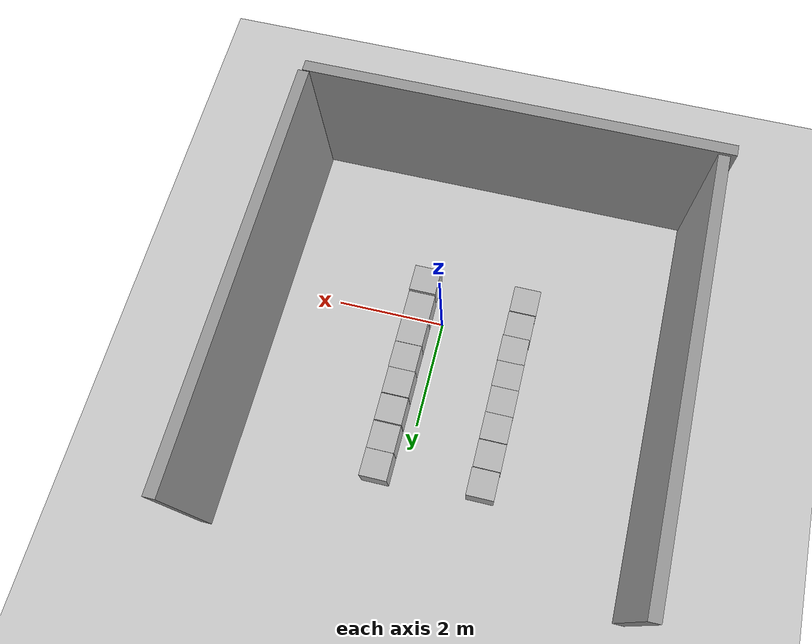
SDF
<sdf version="1.6">
 <world name="default">
  <light name="sun" type="directional">
   <pose>0 0 10 0 -0 0</pose>
   <diffuse>0.8 0.8 0.8 1</diffuse>
   <specular>0.1 0.1 0.1 1</specular>
   <attenuation>
    <range>1000</range>
    <constant>0.9</constant>
    <linear>0.01</linear>
    <quadratic>0.001</quadratic>
   </attenuation>
   <direction>-0.5 0.5 -1</direction>
  </light>
  <model name="ground_plane">
   <static>1</static>
   <link name="link">
    <collision name="collision">
     <geometry><plane><normal>0 0 1</normal><size>100 100</size></plane></geometry>
     <surface><friction><ode><mu>100</mu><mu2>50</mu2></ode></friction></surface>
    </collision>
    <visual name="visual">
     <cast_shadows>0</cast_shadows>
     <geometry><plane><normal>0 0 1</normal><size>100 100</size></plane></geometry>
     <material>
      <script><uri>file://media/materials/scripts/gazebo.material</uri><name>Gazebo/Grey</name></script>
     </material>
    </visual>
   </link>
  </model>
  <gravity>0 0 -9.8</gravity>
  <magnetic_field>6e-06 2.3e-05 -4.2e-05</magnetic_field>
  <atmosphere type="adiabatic"/>
  <physics name="default_physics" default="0" type="ode">
   <max_step_size>0.001</max_step_size>
   <real_time_factor>1</real_time_factor>
   <real_time_update_rate>1000</real_time_update_rate>
  </physics>
  <scene><ambient>0.4 0.4 0.4 1</ambient><background>0.7 0.7 0.7 1</background><shadows>1</shadows></scene>
  <spherical_coordinates>
   <surface_model>EARTH_WGS84</surface_model>
   <latitude_deg>0</latitude_deg>
   <longitude_deg>0</longitude_deg>
   <elevation>0</elevation>
   <heading_deg>0</heading_deg>
  </spherical_coordinates>
  <model name="al_test">
   <link name="link">
    <pose>0 0 0.115 0 -0 0</pose>
    <inertial>
     <mass>0.39</mass>
     <inertia><ixx>0.00058</ixx><ixy>0</ixy><ixz>0</ixz><iyy>0.00058</iyy><iyz>0</iyz><izz>0.00019</izz></inertia>
    </inertial>
    <collision name="collision"><geometry><box><size>0.496 0.496 0.496</size></box></geometry></collision>
    <visual name="visual">
     <geometry><box><size>0.496 0.496 0.496</size></box></geometry>
     <material>
      <script>
       <uri>model://al_test/materials/scripts</uri>
       <uri>model://al_test/materials/textures</uri>
       <name>al_test/Diffuse</name>
      </script>
     </material>
    </visual>
   </link>
   <static>1</static>
   <pose>-1.43039 -0.625049 0.15488 0 -0 0</pose>
  </model>
  <model name="al_test_clone">
   <link name="link">
    <pose>0 0 0.115 0 -0 0</pose>
    <inertial>
     <mass>0.39</mass>
     <inertia><ixx>0.00058</ixx><ixy>0</ixy><ixz>0</ixz><iyy>0.00058</iyy><iyz>0</iyz><izz>0.00019</izz></inertia>
    </inertial>
    <collision name="collision"><geometry><box><size>0.496 0.496 0.496</size></box></geometry></collision>
    <visual name="visual">
     <geometry><box><size>0.496 0.496 0.496</size></box></geometry>
     <material>
      <script>
       <uri>model://al_test/materials/scripts</uri>
       <uri>model://al_test/materials/textures</uri>
       <name>al_test/Diffuse</name>
      </script>
     </material>
    </visual>
   </link>
   <static>1</static>
   <pose>-1.41492 0.353775 0.15488 0 -0 0</pose>
  </model>
  <model name="ap_test">
   <link name="link">
    <pose>0 0 0.115 0 -0 0</pose>
    <inertial>
     <mass>0.39</mass>
     <inertia><ixx>0.00058</ixx><ixy>0</ixy><ixz>0</ixz><iyy>0.00058</iyy><iyz>0</iyz><izz>0.00019</izz></inertia>
    </inertial>
    <collision name="collision"><geometry><box><size>0.496 0.496 0.496</size></box></geometry></collision>
    <visual name="visual">
     <geometry><box><size>0.496 0.496 0.496</size></box></geometry>
     <material>
      <script>
       <uri>model://ap_test/materials/scripts</uri>
       <uri>model://ap_test/materials/textures</uri>
       <name>ap_test/Diffuse</name>
      </script>
     </material>
    </visual>
   </link>
   <static>1</static>
   <pose>-1.4256 -0.120952 0.145721 0 -0 0</pose>
  </model>
  <model name="al_test_clone_clone">
   <link name="link">
    <pose>0 0 0.115 0 -0 0</pose>
    <inertial>
     <mass>0.39</mass>
     <inertia><ixx>0.00058</ixx><ixy>0</ixy><ixz>0</ixz><iyy>0.00058</iyy><iyz>0</iyz><izz>0.00019</izz></inertia>
    </inertial>
    <collision name="collision"><geometry><box><size>0.496 0.496 0.496</size></box></geometry></collision>
    <visual name="visual">
     <geometry><box><size>0.496 0.496 0.496</size></box></geometry>
     <material>
      <script>
       <uri>model://al_test/materials/scripts</uri>
       <uri>model://al_test/materials/textures</uri>
       <name>al_test/Diffuse</name>
      </script>
     </material>
    </visual>
   </link>
   <static>1</static>
   <pose>-1.41777 0.840713 0.15488 0 -0 0</pose>
  </model>
  <model name="al_test_clone_clone_clone">
   <link name="link">
    <pose>0 0 0.115 0 -0 0</pose>
    <inertial>
     <mass>0.39</mass>
     <inertia><ixx>0.00058</ixx><ixy>0</ixy><ixz>0</ixz><iyy>0.00058</iyy><iyz>0</iyz><izz>0.00019</izz></inertia>
    </inertial>
    <collision name="collision"><geometry><box><size>0.496 0.496 0.496</size></box></geometry></collision>
    <visual name="visual">
     <geometry><box><size>0.496 0.496 0.496</size></box></geometry>
     <material>
      <script>
       <uri>model://al_test/materials/scripts</uri>
       <uri>model://al_test/materials/textures</uri>
       <name>al_test/Diffuse</name>
      </script>
     </material>
    </visual>
   </link>
   <static>1</static>
   <pose>-1.42101 1.33343 0.15488 0 -0 0</pose>
  </model>
  <model name="al_test_clone_clone_clone_0">
   <link name="link">
    <pose>0 0 0.115 0 -0 0</pose>
    <inertial>
     <mass>0.39</mass>
     <inertia><ixx>0.00058</ixx><ixy>0</ixy><ixz>0</ixz><iyy>0.00058</iyy><iyz>0</iyz><izz>0.00019</izz></inertia>
    </inertial>
    <collision name="collision"><geometry><box><size>0.496 0.496 0.496</size></box></geometry></collision>
    <visual name="visual">
     <geometry><box><size>0.496 0.496 0.496</size></box></geometry>
     <material>
      <script>
       <uri>model://al_test/materials/scripts</uri>
       <uri>model://al_test/materials/textures</uri>
       <name>al_test/Diffuse</name>
      </script>
     </material>
    </visual>
   </link>
   <static>1</static>
   <pose>-1.41894 1.82479 0.15488 0 -0 0</pose>
  </model>
  <model name="al_test_clone_clone_clone_0_clone">
   <link name="link">
    <pose>0 0 0.115 0 -0 0</pose>
    <inertial>
     <mass>0.39</mass>
     <inertia><ixx>0.00058</ixx><ixy>0</ixy><ixz>0</ixz><iyy>0.00058</iyy><iyz>0</iyz><izz>0.00019</izz></inertia>
    </inertial>
    <collision name="collision"><geometry><box><size>0.496 0.496 0.496</size></box></geometry></collision>
    <visual name="visual">
     <geometry><box><size>0.496 0.496 0.496</size></box></geometry>
     <material>
      <script>
       <uri>model://al_test/materials/scripts</uri>
       <uri>model://al_test/materials/textures</uri>
       <name>al_test/Diffuse</name>
      </script>
     </material>
    </visual>
   </link>
   <static>1</static>
   <pose>-1.41756 2.33034 0.15488 0 -0 0</pose>
  </model>
  <model name="al_test_clone_clone_clone_0_clone_clone">
   <link name="link">
    <pose>0 0 0.115 0 -0 0</pose>
    <inertial>
     <mass>0.39</mass>
     <inertia><ixx>0.00058</ixx><ixy>0</ixy><ixz>0</ixz><iyy>0.00058</iyy><iyz>0</iyz><izz>0.00019</izz></inertia>
    </inertial>
    <collision name="collision"><geometry><box><size>0.496 0.496 0.496</size></box></geometry></collision>
    <visual name="visual">
     <geometry><box><size>0.496 0.496 0.496</size></box></geometry>
     <material>
      <script>
       <uri>model://al_test/materials/scripts</uri>
       <uri>model://al_test/materials/textures</uri>
       <name>al_test/Diffuse</name>
      </script>
     </material>
    </visual>
   </link>
   <static>1</static>
   <pose>-1.409 2.83447 0.15488 0 -0 0</pose>
  </model>
  <model name="al_test_clone_0">
   <link name="link">
    <pose>0 0 0.115 0 -0 0</pose>
    <inertial>
     <mass>0.39</mass>
     <inertia><ixx>0.00058</ixx><ixy>0</ixy><ixz>0</ixz><iyy>0.00058</iyy><iyz>0</iyz><izz>0.00019</izz></inertia>
    </inertial>
    <collision name="collision"><geometry><box><size>0.496 0.496 0.496</size></box></geometry></collision>
    <visual name="visual">
     <geometry><box><size>0.496 0.496 0.496</size></box></geometry>
     <material>
      <script>
       <uri>model://al_test/materials/scripts</uri>
       <uri>model://al_test/materials/textures</uri>
       <name>al_test/Diffuse</name>
      </script>
     </material>
    </visual>
   </link>
   <static>1</static>
   <pose>0.470856 -0.626066 0.15488 0 -0 0</pose>
  </model>
  <model name="al_test_clone_1">
   <link name="link">
    <pose>0 0 0.115 0 -0 0</pose>
    <inertial>
     <mass>0.39</mass>
     <inertia><ixx>0.00058</ixx><ixy>0</ixy><ixz>0</ixz><iyy>0.00058</iyy><iyz>0</iyz><izz>0.00019</izz></inertia>
    </inertial>
    <collision name="collision"><geometry><box><size>0.496 0.496 0.496</size></box></geometry></collision>
    <visual name="visual">
     <geometry><box><size>0.496 0.496 0.496</size></box></geometry>
     <material>
      <script>
       <uri>model://al_test/materials/scripts</uri>
       <uri>model://al_test/materials/textures</uri>
       <name>al_test/Diffuse</name>
      </script>
     </material>
    </visual>
   </link>
   <static>1</static>
   <pose>0.460533 -0.09709 0.15488 0 -0 0</pose>
  </model>
  <model name="al_test_clone_2">
   <link name="link">
    <pose>0 0 0.115 0 -0 0</pose>
    <inertial>
     <mass>0.39</mass>
     <inertia><ixx>0.00058</ixx><ixy>0</ixy><ixz>0</ixz><iyy>0.00058</iyy><iyz>0</iyz><izz>0.00019</izz></inertia>
    </inertial>
    <collision name="collision"><geometry><box><size>0.496 0.496 0.496</size></box></geometry></collision>
    <visual name="visual">
     <geometry><box><size>0.496 0.496 0.496</size></box></geometry>
     <material>
      <script>
       <uri>model://al_test/materials/scripts</uri>
       <uri>model://al_test/materials/textures</uri>
       <name>al_test/Diffuse</name>
      </script>
     </material>
    </visual>
   </link>
   <static>1</static>
   <pose>0.460573 0.416829 0.15488 0 -0 0</pose>
  </model>
  <model name="al_test_clone_3">
   <link name="link">
    <pose>0 0 0.115 0 -0 0</pose>
    <inertial>
     <mass>0.39</mass>
     <inertia><ixx>0.00058</ixx><ixy>0</ixy><ixz>0</ixz><iyy>0.00058</iyy><iyz>0</iyz><izz>0.00019</izz></inertia>
    </inertial>
    <collision name="collision"><geometry><box><size>0.496 0.496 0.496</size></box></geometry></collision>
    <visual name="visual">
     <geometry><box><size>0.496 0.496 0.496</size></box></geometry>
     <material>
      <script>
       <uri>model://al_test/materials/scripts</uri>
       <uri>model://al_test/materials/textures</uri>
       <name>al_test/Diffuse</name>
      </script>
     </material>
    </visual>
   </link>
   <static>1</static>
   <pose>0.460861 0.915155 0.15488 0 -0 0</pose>
  </model>
  <model name="al_test_clone_4">
   <link name="link">
    <pose>0 0 0.115 0 -0 0</pose>
    <inertial>
     <mass>0.39</mass>
     <inertia><ixx>0.00058</ixx><ixy>0</ixy><ixz>0</ixz><iyy>0.00058</iyy><iyz>0</iyz><izz>0.00019</izz></inertia>
    </inertial>
    <collision name="collision"><geometry><box><size>0.496 0.496 0.496</size></box></geometry></collision>
    <visual name="visual">
     <geometry><box><size>0.496 0.496 0.496</size></box></geometry>
     <material>
      <script>
       <uri>model://al_test/materials/scripts</uri>
       <uri>model://al_test/materials/textures</uri>
       <name>al_test/Diffuse</name>
      </script>
     </material>
    </visual>
   </link>
   <static>1</static>
   <pose>0.453493 1.40555 0.15488 0 -0 0</pose>
  </model>
  <model name="ap_test_clone">
   <link name="link">
    <pose>0 0 0.115 0 -0 0</pose>
    <inertial>
     <mass>0.39</mass>
     <inertia><ixx>0.00058</ixx><ixy>0</ixy><ixz>0</ixz><iyy>0.00058</iyy><iyz>0</iyz><izz>0.00019</izz></inertia>
    </inertial>
    <collision name="collision"><geometry><box><size>0.496 0.496 0.496</size></box></geometry></collision>
    <visual name="visual">
     <geometry><box><size>0.496 0.496 0.496</size></box></geometry>
     <material>
      <script>
       <uri>model://ap_test/materials/scripts</uri>
       <uri>model://ap_test/materials/textures</uri>
       <name>ap_test/Diffuse</name>
      </script>
     </material>
    </visual>
   </link>
   <static>1</static>
   <pose>0.453669 1.91165 0.145721 0 -0 0</pose>
  </model>
  <model name="ap_test_clone_0">
   <link name="link">
    <pose>0 0 0.115 0 -0 0</pose>
    <inertial>
     <mass>0.39</mass>
     <inertia><ixx>0.00058</ixx><ixy>0</ixy><ixz>0</ixz><iyy>0.00058</iyy><iyz>0</iyz><izz>0.00019</izz></inertia>
    </inertial>
    <collision name="collision"><geometry><box><size>0.496 0.496 0.496</size></box></geometry></collision>
    <visual name="visual">
     <geometry><box><size>0.496 0.496 0.496</size></box></geometry>
     <material>
      <script>
       <uri>model://ap_test/materials/scripts</uri>
       <uri>model://ap_test/materials/textures</uri>
       <name>ap_test/Diffuse</name>
      </script>
     </material>
    </visual>
   </link>
   <static>1</static>
   <pose>0.453708 2.42551 0.145721 0 -0 0</pose>
  </model>
  <model name="al_test_clone_4_clone">
   <link name="link">
    <pose>0 0 0.115 0 -0 0</pose>
    <inertial>
     <mass>0.39</mass>
     <inertia><ixx>0.00058</ixx><ixy>0</ixy><ixz>0</ixz><iyy>0.00058</iyy><iyz>0</iyz><izz>0.00019</izz></inertia>
    </inertial>
    <collision name="collision"><geometry><box><size>0.496 0.496 0.496</size></box></geometry></collision>
    <visual name="visual">
     <geometry><box><size>0.496 0.496 0.496</size></box></geometry>
     <material>
      <script>
       <uri>model://al_test/materials/scripts</uri>
       <uri>model://al_test/materials/textures</uri>
       <name>al_test/Diffuse</name>
      </script>
     </material>
    </visual>
   </link>
   <static>1</static>
   <pose>0.454009 2.9238 0.15488 0 -0 0</pose>
  </model>
  <model name="grey_wall">
   <static>1</static>
   <link name="link">
    <pose>0 0 1.4 0 -0 0</pose>
    <collision name="collision"><geometry><box><size>7.5 0.2 2.8</size></box></geometry></collision>
    <visual name="visual">
     <cast_shadows>0</cast_shadows>
     <geometry><box><size>7.5 0.2 2.8</size></box></geometry>
     <material>
      <script>
       <uri>model://grey_wall/materials/scripts</uri>
       <uri>model://grey_wall/materials/textures</uri>
       <name>vrc/grey_wall</name>
      </script>
     </material>
    </visual>
   </link>
   <pose>-0.595621 -3.10812 0 0 -0 0</pose>
  </model>
  <model name="grey_wall_clone">
   <static>1</static>
   <link name="link">
    <pose>0 0 1.4 0 -0 0</pose>
    <collision name="collision"><geometry><box><size>7.5 0.2 2.8</size></box></geometry></collision>
    <visual name="visual">
     <cast_shadows>0</cast_shadows>
     <geometry><box><size>7.5 0.2 2.8</size></box></geometry>
     <material>
      <script>
       <uri>model://grey_wall/materials/scripts</uri>
       <uri>model://grey_wall/materials/textures</uri>
       <name>vrc/grey_wall</name>
      </script>
     </material>
    </visual>
   </link>
   <pose>-4.12756 0.778827 0 0 0 -1.57285</pose>
  </model>
  <model name="grey_wall_clone_clone">
   <static>1</static>
   <link name="link">
    <pose>0 0 1.4 0 -0 0</pose>
    <collision name="collision"><geometry><box><size>7.5 0.2 2.8</size></box></geometry></collision>
    <visual name="visual">
     <cast_shadows>0</cast_shadows>
     <geometry><box><size>7.5 0.2 2.8</size></box></geometry>
     <material>
      <script>
       <uri>model://grey_wall/materials/scripts</uri>
       <uri>model://grey_wall/materials/textures</uri>
       <name>vrc/grey_wall</name>
      </script>
     </material>
    </visual>
   </link>
   <pose>3.13183 0.756402 0 0 0 -1.57285</pose>
  </model>
 </world>
</sdf>
